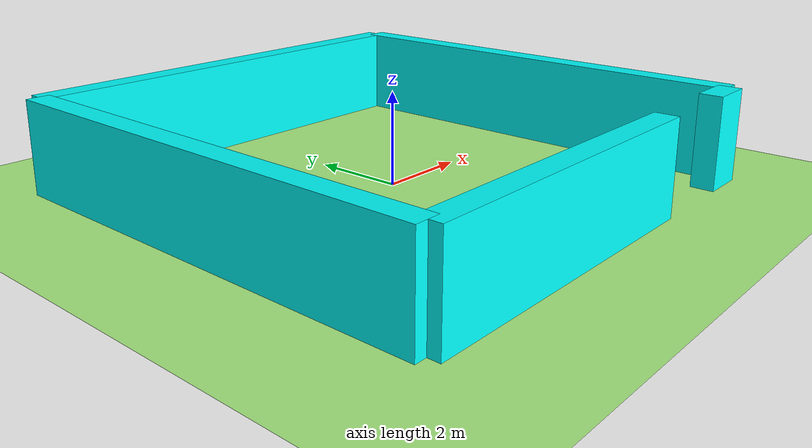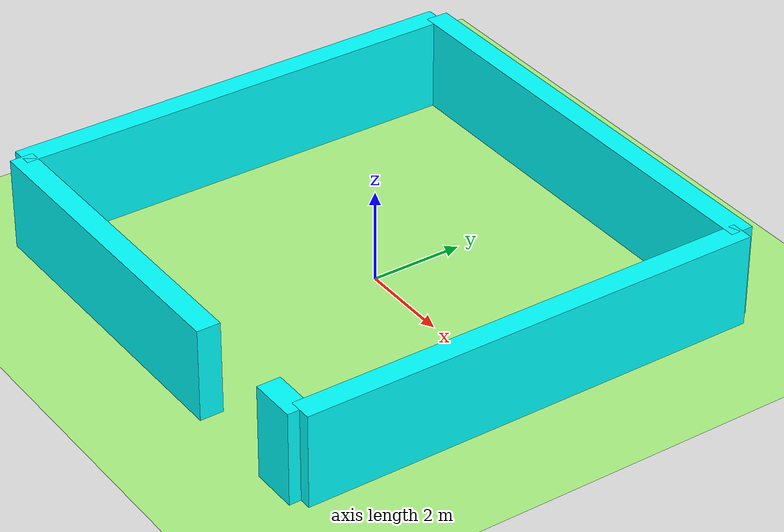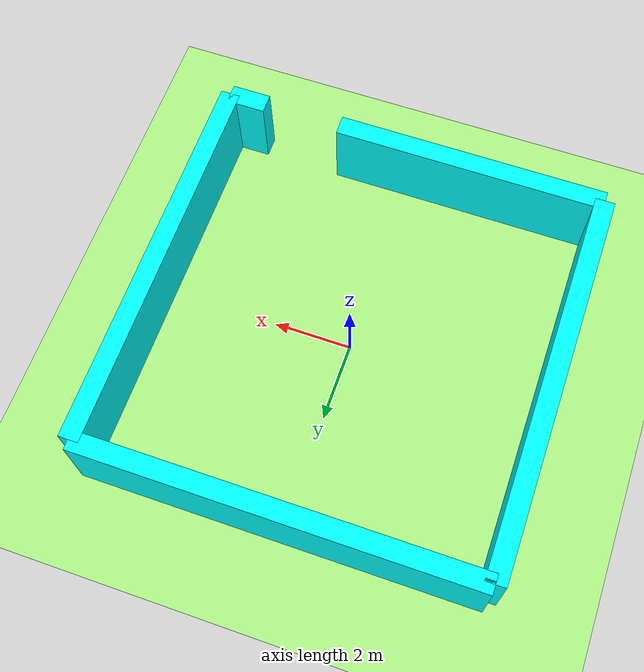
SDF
<sdf version="1.9">
 <world name="my_world">
  <plugin filename="libignition-gazebo-physics-system.so" name="ignition::gazebo::systems::Physics"/>
  <plugin filename="libignition-gazebo-scene-broadcaster-system.so" name="ignition::gazebo::systems::SceneBroadcaster"/>
  <plugin filename="libignition-gazebo-sensors-system.so" name="ignition::gazebo::systems::Sensors">
   <render_engine>ogre2</render_engine>
  </plugin>
  <include><uri>model://gazebo/tp3_light.sdf</uri></include>
  <include><uri>model://gazebo/tp3_ground.sdf</uri></include>
  <include><uri>model://gazebo/tp3_room.sdf</uri></include>
 </world>
</sdf>

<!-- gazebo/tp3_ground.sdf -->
<sdf version="1.9">
    <!-- adding the ground plane -->
    <model name="ground_plane">
        <!-- the ground will not move... -->
        <static>true</static>
        <!-- it is composed of only one link-->
        <link name="ground_plane_link">
            <!-- The collision shape of the link (can differ from the visual shape) -->
            <collision name="ground_plane_collision">
                <!-- the geometry of the collision  -->
                <geometry>
                    <plane>
                        <!-- A ground plane  (x, y) -->
                        <normal>0 0 1</normal>
                    </plane>
                </geometry>
            </collision>
            <!-- the visual aspect of the link -->
            <visual name="ground_plane_visual">
                <!-- the visual geometry of the link  -->
                <geometry>
                    <plane>
                        <!-- A ground plane  (x, y) -->
                        <normal>0 0 1</normal>
                        <!-- with a 100x100 size (meters) -->
                        <size>100 100</size>
                    </plane>
                </geometry>
                <material>
                    <!-- To define the color of the ground with the light reflexion -->
                    <ambient>0.68 0.96 0.52 1</ambient>
                    <diffuse>0.68 0.96 0.52 1</diffuse>
                    <specular>0.68 0.96 0.52 1</specular>
                </material>
            </visual>
        </link>
    </model>
</sdf>

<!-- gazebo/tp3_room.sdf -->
<sdf version="1.9">
    <model name='room'>
        <static>true</static>

            <link name='wNorth'>
                <pose relative_to='__model__'>5.0 0 1.0 0 0 0</pose>
                <visual name='visual'>
                    <geometry>
                        <box>
                            <size>0.5 10 2</size>
                        </box>
                    </geometry>
                    <material>
                        <ambient>0.0 1.0 1.0 1</ambient>
                        <diffuse>0.0 1.0 1.0 1</diffuse>
                        <specular>0.0 1.0 1.0 1</specular>
                    </material>
                </visual>
                <collision name='collision'>
                    <geometry>
                        <box>
                            <size>0.5 10 2</size>
                        </box>
                    </geometry>
                </collision>
            </link>

            <link name='wWest'>
                <pose relative_to='__model__'>0 5.0 1.0 0 0 1.570796327</pose>
                <visual name='visual'>
                    <geometry>
                        <box>
                            <size>0.5 10 2</size>
                        </box>
                    </geometry>
                    <material>
                        <ambient>0.0 1.0 1.0 1</ambient>
                        <diffuse>0.0 1.0 1.0 1</diffuse>
                        <specular>0.0 1.0 1.0 1</specular>
                    </material>
                </visual>
                <collision name='collision'>
                    <geometry>
                        <box>
                            <size>0.5 10 2</size>
                        </box>
                    </geometry>
                </collision>
            </link>

            <link name='wSouth'>
                <pose relative_to='__model__'>-5.0 0 1.0 0 0 0</pose>
                <visual name='visual'>
                    <geometry>
                        <box>
                            <size>0.5 10 2</size>
                        </box>
                    </geometry>
                    <material>
                        <ambient>0.0 1.0 1.0 1</ambient>
                        <diffuse>0.0 1.0 1.0 1</diffuse>
                        <specular>0.0 1.0 1.0 1</specular>
                    </material>
                </visual>
                <collision name='collision'>
                    <geometry>
                        <box>
                            <size>0.5 10 2</size>
                        </box>
                    </geometry>
                </collision>
            </link>

            <link name='wEast1'>
                <pose relative_to='__model__'>-1.5 -5.0 1.0 0 0 1.570796327</pose>
                <visual name='visual'>
                    <geometry>
                        <box>
                            <size>0.5 7 2</size>
                        </box>
                    </geometry>
                    <material>
                        <ambient>0.0 1.0 1.0 1</ambient>
                        <diffuse>0.0 1.0 1.0 1</diffuse>
                        <specular>0.0 1.0 1.0 1</specular>
                    </material>
                </visual>
                <collision name='collision'>
                    <geometry>
                        <box>
                            <size>0.5 7 2</size>
                        </box>
                    </geometry>
                </collision>
            </link>

            <link name='wEast2'>
                <pose relative_to='__model__'>4.5 -5.0 1.0 0 0 1.570796327</pose>
                <visual name='visual'>
                    <geometry>
                        <box>
                            <size>0.5 1 2</size>
                        </box>
                    </geometry>
                    <material>
                        <ambient>0.0 1.0 1.0 1</ambient>
                        <diffuse>0.0 1.0 1.0 1</diffuse>
                        <specular>0.0 1.0 1.0 1</specular>
                    </material>
                </visual>
                <collision name='collision'>
                    <geometry>
                        <box>
                            <size>0.5 1 2</size>
                        </box>
                    </geometry>
                </collision>
            </link>

    </model>
</sdf>
